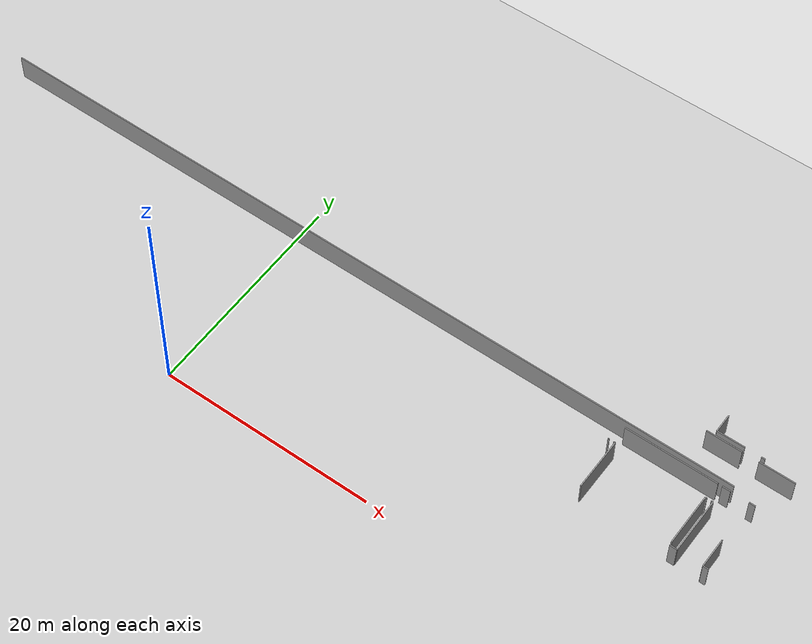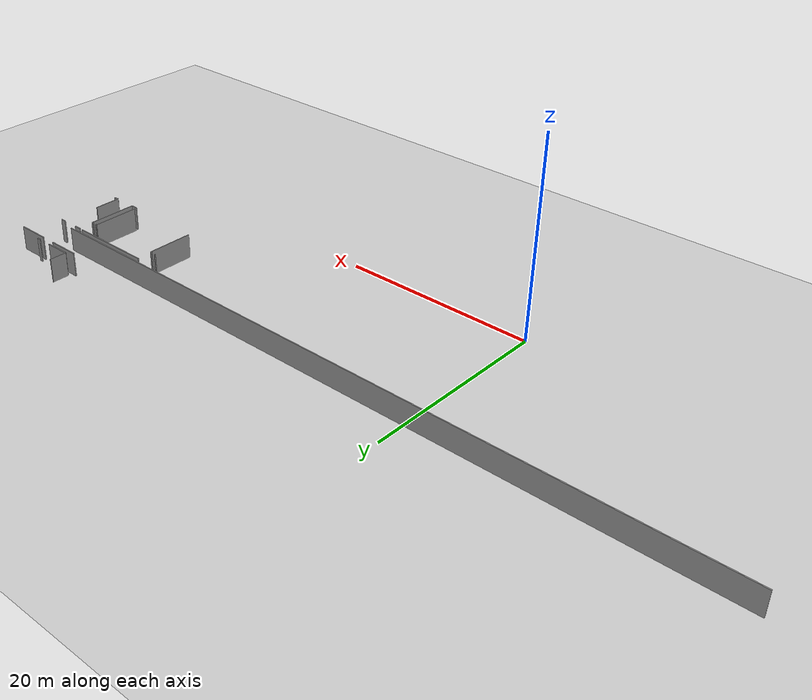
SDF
<sdf version="1.6">
 <world name="default">
  <model name="ground_plane">
   <static>1</static>
   <link name="link">
    <collision name="collision">
     <geometry><plane><normal>0 0 1</normal><size>100 100</size></plane></geometry>
     <surface><friction><ode><mu>100</mu><mu2>50</mu2></ode></friction></surface>
    </collision>
    <visual name="visual">
     <cast_shadows>0</cast_shadows>
     <geometry><plane><normal>0 0 1</normal><size>100 100</size></plane></geometry>
     <material>
      <script><uri>file://media/materials/scripts/gazebo.material</uri><name>Gazebo/Grey</name></script>
     </material>
    </visual>
   </link>
  </model>
  <model name="50010535_PLAN1">
   <static>1</static>
   <link name="Wall_338">
    <collision name="Wall_338_Collision">
     <geometry><box><size>0.124012884125 0.1 2.5</size></box></geometry>
     <pose>0.0620064420627 0 1.25 0 0 0</pose>
    </collision>
    <visual name="Wall_338_Visual">
     <pose>0.0620064420627 0 1.25 0 0 0</pose>
     <geometry><box><size>0.124012884125 0.1 2.5</size></box></geometry>
     <material>
      <script><uri>file://media/materials/scripts/gazebo.material</uri><name>Gazebo/Grey</name></script>
      <ambient>1 1 1 1</ambient>
     </material>
    </visual>
    <pose>135.397419363 -14.7501635928 0 0 0 3.14159265359</pose>
   </link>
   <link name="Wall_341">
    <collision name="Wall_341_Collision">
     <geometry><box><size>4.84844634473 0.1 2.5</size></box></geometry>
     <pose>2.42422317237 0 1.25 0 0 0</pose>
    </collision>
    <visual name="Wall_341_Visual">
     <pose>2.42422317237 0 1.25 0 0 0</pose>
     <geometry><box><size>4.84844634473 0.1 2.5</size></box></geometry>
     <material>
      <script><uri>file://media/materials/scripts/gazebo.material</uri><name>Gazebo/Grey</name></script>
      <ambient>1 1 1 1</ambient>
     </material>
    </visual>
    <pose>135.948615973 -19.6128409243 0 0 0 1.57079632679</pose>
   </link>
   <link name="Wall_342">
    <collision name="Wall_342_Collision">
     <geometry><box><size>0.148917110856 0.1 2.5</size></box></geometry>
     <pose>0.0744585554278 0 1.25 0 0 0</pose>
    </collision>
    <visual name="Wall_342_Visual">
     <pose>0.0744585554278 0 1.25 0 0 0</pose>
     <geometry><box><size>0.148917110856 0.1 2.5</size></box></geometry>
     <material>
      <script><uri>file://media/materials/scripts/gazebo.material</uri><name>Gazebo/Grey</name></script>
      <ambient>1 1 1 1</ambient>
     </material>
    </visual>
    <pose>135.948615973 -14.7643945795 0 0 0 3.14159265359</pose>
   </link>
   <link name="Wall_343">
    <collision name="Wall_343_Collision">
     <geometry><box><size>8.61025520479 0.1 2.5</size></box></geometry>
     <pose>4.3051276024 0 1.25 0 0 0</pose>
    </collision>
    <visual name="Wall_343_Visual">
     <pose>4.3051276024 0 1.25 0 0 0</pose>
     <geometry><box><size>8.61025520479 0.1 2.5</size></box></geometry>
     <material>
      <script><uri>file://media/materials/scripts/gazebo.material</uri><name>Gazebo/Grey</name></script>
      <ambient>1 1 1 1</ambient>
     </material>
    </visual>
    <pose>135.799698862 -13.1247816115 0 0 0 0.0</pose>
   </link>
   <link name="Wall_344">
    <collision name="Wall_344_Collision">
     <geometry><box><size>0.160606849933 0.1 2.5</size></box></geometry>
     <pose>0.0803034249665 0 1.25 0 0 0</pose>
    </collision>
    <visual name="Wall_344_Visual">
     <pose>0.0803034249665 0 1.25 0 0 0</pose>
     <geometry><box><size>0.160606849933 0.1 2.5</size></box></geometry>
     <material>
      <script><uri>file://media/materials/scripts/gazebo.material</uri><name>Gazebo/Grey</name></script>
      <ambient>1 1 1 1</ambient>
     </material>
    </visual>
    <pose>144.409954067 -14.7562625871 0 0 0 3.14159265359</pose>
   </link>
   <link name="Wall_345">
    <collision name="Wall_345_Collision">
     <geometry><box><size>4.84310972472 0.1 2.5</size></box></geometry>
     <pose>2.42155486236 0 1.25 0 0 0</pose>
    </collision>
    <visual name="Wall_345_Visual">
     <pose>2.42155486236 0 1.25 0 0 0</pose>
     <geometry><box><size>4.84310972472 0.1 2.5</size></box></geometry>
     <material>
      <script><uri>file://media/materials/scripts/gazebo.material</uri><name>Gazebo/Grey</name></script>
      <ambient>1 1 1 1</ambient>
     </material>
    </visual>
    <pose>144.249347217 -14.7562625871 0 0 0 -1.57079632679</pose>
   </link>
   <link name="Wall_409">
    <collision name="Wall_409_Collision">
     <geometry><box><size>0.671651747425 0.1 2.5</size></box></geometry>
     <pose>0.335825873713 0 1.25 0 0 0</pose>
    </collision>
    <visual name="Wall_409_Visual">
     <pose>0.335825873713 0 1.25 0 0 0</pose>
     <geometry><box><size>0.671651747425 0.1 2.5</size></box></geometry>
     <material>
      <script><uri>file://media/materials/scripts/gazebo.material</uri><name>Gazebo/Grey</name></script>
      <ambient>1 1 1 1</ambient>
     </material>
    </visual>
    <pose>144.280604563 -19.9205860117 0 0 0 0.0</pose>
   </link>
   <link name="Wall_410">
    <collision name="Wall_410_Collision">
     <geometry><box><size>5.16610229792 0.1 2.5</size></box></geometry>
     <pose>2.58305114896 0 1.25 0 0 0</pose>
    </collision>
    <visual name="Wall_410_Visual">
     <pose>2.58305114896 0 1.25 0 0 0</pose>
     <geometry><box><size>5.16610229792 0.1 2.5</size></box></geometry>
     <material>
      <script><uri>file://media/materials/scripts/gazebo.material</uri><name>Gazebo/Grey</name></script>
      <ambient>1 1 1 1</ambient>
     </material>
    </visual>
    <pose>144.95225631 -19.9205860117 0 0 0 1.57079632679</pose>
   </link>
   <link name="Wall_411">
    <collision name="Wall_411_Collision">
     <geometry><box><size>0.172804838535 0.1 2.5</size></box></geometry>
     <pose>0.0864024192677 0 1.25 0 0 0</pose>
    </collision>
    <visual name="Wall_411_Visual">
     <pose>0.0864024192677 0 1.25 0 0 0</pose>
     <geometry><box><size>0.172804838535 0.1 2.5</size></box></geometry>
     <material>
      <script><uri>file://media/materials/scripts/gazebo.material</uri><name>Gazebo/Grey</name></script>
      <ambient>1 1 1 1</ambient>
     </material>
    </visual>
    <pose>144.95225631 -14.7544837138 0 0 0 3.14159265359</pose>
   </link>
   <link name="Wall_412">
    <collision name="Wall_412_Collision">
     <geometry><box><size>0.761357788606 0.1 2.5</size></box></geometry>
     <pose>0.380678894303 0 1.25 0 0 0</pose>
    </collision>
    <visual name="Wall_412_Visual">
     <pose>0.380678894303 0 1.25 0 0 0</pose>
     <geometry><box><size>0.761357788606 0.1 2.5</size></box></geometry>
     <material>
      <script><uri>file://media/materials/scripts/gazebo.material</uri><name>Gazebo/Grey</name></script>
      <ambient>1 1 1 1</ambient>
     </material>
    </visual>
    <pose>144.779451472 -13.1346924773 0 0 0 0.0</pose>
   </link>
   <link name="Wall_413">
    <collision name="Wall_413_Collision">
     <geometry><box><size>0.57152659098 0.1 2.5</size></box></geometry>
     <pose>0.28576329549 0 1.25 0 0 0</pose>
    </collision>
    <visual name="Wall_413_Visual">
     <pose>0.28576329549 0 1.25 0 0 0</pose>
     <geometry><box><size>0.57152659098 0.1 2.5</size></box></geometry>
     <material>
      <script><uri>file://media/materials/scripts/gazebo.material</uri><name>Gazebo/Grey</name></script>
      <ambient>1 1 1 1</ambient>
     </material>
    </visual>
    <pose>147.205326455 -13.1346924773 0 0 0 0.0</pose>
   </link>
   <link name="Wall_417">
    <collision name="Wall_417_Collision">
     <geometry><box><size>2.77860015375 0.1 2.5</size></box></geometry>
     <pose>1.38930007687 0 1.25 0 0 0</pose>
    </collision>
    <visual name="Wall_417_Visual">
     <pose>1.38930007687 0 1.25 0 0 0</pose>
     <geometry><box><size>2.77860015375 0.1 2.5</size></box></geometry>
     <material>
      <script><uri>file://media/materials/scripts/gazebo.material</uri><name>Gazebo/Grey</name></script>
      <ambient>1 1 1 1</ambient>
     </material>
    </visual>
    <pose>147.276227264 -17.1656194609 0 0 0 -1.57079632679</pose>
   </link>
   <link name="Wall_418">
    <collision name="Wall_418_Collision">
     <geometry><box><size>0.505708277479 0.1 2.5</size></box></geometry>
     <pose>0.252854138739 0 1.25 0 0 0</pose>
    </collision>
    <visual name="Wall_418_Visual">
     <pose>0.252854138739 0 1.25 0 0 0</pose>
     <geometry><box><size>0.505708277479 0.1 2.5</size></box></geometry>
     <material>
      <script><uri>file://media/materials/scripts/gazebo.material</uri><name>Gazebo/Grey</name></script>
      <ambient>1 1 1 1</ambient>
     </material>
    </visual>
    <pose>147.276227264 -19.9442196146 0 0 0 0.0</pose>
   </link>
   <link name="Wall_567">
    <collision name="Wall_567_Collision">
     <geometry><box><size>1.7704872207 0.1 2.5</size></box></geometry>
     <pose>0.885243610351 0 1.25 0 0 0</pose>
    </collision>
    <visual name="Wall_567_Visual">
     <pose>0.885243610351 0 1.25 0 0 0</pose>
     <geometry><box><size>1.7704872207 0.1 2.5</size></box></geometry>
     <material>
      <script><uri>file://media/materials/scripts/gazebo.material</uri><name>Gazebo/Grey</name></script>
      <ambient>1 1 1 1</ambient>
     </material>
    </visual>
    <pose>141.788911266 -9.08623088505 0 0 0 1.57079632679</pose>
   </link>
   <link name="Wall_575">
    <collision name="Wall_575_Collision">
     <geometry><box><size>0.35247104566 0.1 2.5</size></box></geometry>
     <pose>0.17623552283 0 1.25 0 0 0</pose>
    </collision>
    <visual name="Wall_575_Visual">
     <pose>0.17623552283 0 1.25 0 0 0</pose>
     <geometry><box><size>0.35247104566 0.1 2.5</size></box></geometry>
     <material>
      <script><uri>file://media/materials/scripts/gazebo.material</uri><name>Gazebo/Grey</name></script>
      <ambient>1 1 1 1</ambient>
     </material>
    </visual>
    <pose>146.207632637 -9.07936951646 0 0 0 3.14159265359</pose>
   </link>
   <link name="Wall_576">
    <collision name="Wall_576_Collision">
     <geometry><box><size>2.57835897039 0.1 2.5</size></box></geometry>
     <pose>1.2891794852 0 1.25 0 0 0</pose>
    </collision>
    <visual name="Wall_576_Visual">
     <pose>1.2891794852 0 1.25 0 0 0</pose>
     <geometry><box><size>2.57835897039 0.1 2.5</size></box></geometry>
     <material>
      <script><uri>file://media/materials/scripts/gazebo.material</uri><name>Gazebo/Grey</name></script>
      <ambient>1 1 1 1</ambient>
     </material>
    </visual>
    <pose>144.367261107 -9.07936951646 0 0 0 -3.13893151262</pose>
   </link>
   <link name="Wall_627">
    <collision name="Wall_627_Collision">
     <geometry><box><size>3.30133479032 0.1 2.5</size></box></geometry>
     <pose>1.65066739516 0 1.25 0 0 0</pose>
    </collision>
    <visual name="Wall_627_Visual">
     <pose>1.65066739516 0 1.25 0 0 0</pose>
     <geometry><box><size>3.30133479032 0.1 2.5</size></box></geometry>
     <material>
      <script><uri>file://media/materials/scripts/gazebo.material</uri><name>Gazebo/Grey</name></script>
      <ambient>1 1 1 1</ambient>
     </material>
    </visual>
    <pose>141.109127526 -9.54975445195 0 0 0 0.0</pose>
   </link>
   <link name="Wall_628">
    <collision name="Wall_628_Collision">
     <geometry><box><size>3.30641728557 0.1 2.5</size></box></geometry>
     <pose>1.65320864278 0 1.25 0 0 0</pose>
    </collision>
    <visual name="Wall_628_Visual">
     <pose>1.65320864278 0 1.25 0 0 0</pose>
     <geometry><box><size>3.30641728557 0.1 2.5</size></box></geometry>
     <material>
      <script><uri>file://media/materials/scripts/gazebo.material</uri><name>Gazebo/Grey</name></script>
      <ambient>1 1 1 1</ambient>
     </material>
    </visual>
    <pose>145.9260624 -9.54975445195 0 0 0 0.0</pose>
   </link>
   <link name="Wall_636">
    <collision name="Wall_636_Collision">
     <geometry><box><size>73.5182938063 0.1 2.5</size></box></geometry>
     <pose>36.7591469032 0 1.25 0 0 0</pose>
    </collision>
    <visual name="Wall_636_Visual">
     <pose>36.7591469032 0 1.25 0 0 0</pose>
     <geometry><box><size>73.5182938063 0.1 2.5</size></box></geometry>
     <material>
      <script><uri>file://media/materials/scripts/gazebo.material</uri><name>Gazebo/Grey</name></script>
      <ambient>1 1 1 1</ambient>
     </material>
    </visual>
    <pose>145.533185517 -12.6045882226 0 0 0 3.14159265359</pose>
   </link>
   <pose>-102.6 29.5103111122 0 0 0 0</pose>
  </model>
 </world>
</sdf>
